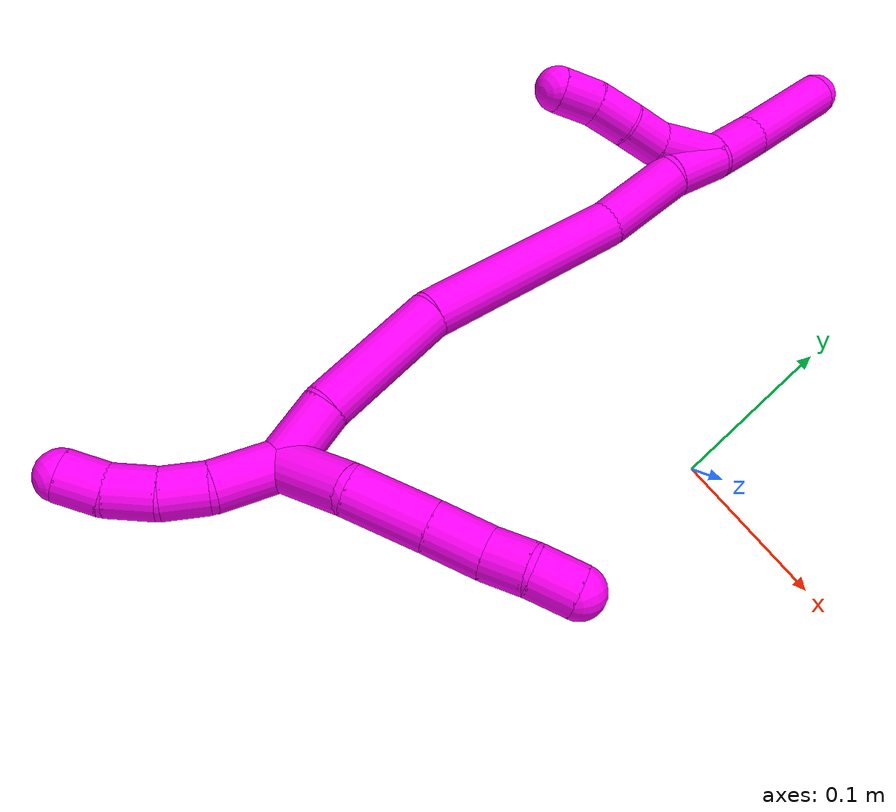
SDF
<sdf version="1.7">
 <world name="default">
  <model name="10">
   <static>0</static>
   <link name="10">
    <collision name="collision-cylinder-e_1_2_8">
     <pose>0.018732 -0.002468 -0.005484 2.71872 1.26012 2.56906</pose>
     <geometry><cylinder><radius>0.0125</radius><length>0.039347</length></cylinder></geometry>
     <surface>
      <friction><ode><mu>1.16</mu><mu2>1.16</mu2><slip1>0</slip1><slip2>0</slip2></ode></friction>
      <contact><ode><kp>1e+06</kp><kd>1</kd><max_vel>0</max_vel><min_depth>0.001</min_depth></ode></contact>
     </surface>
    </collision>
    <visual name="visual-cylinder-e_1_2_8">
     <pose>0.018732 -0.002468 -0.005484 2.71872 1.26012 2.56906</pose>
     <geometry><cylinder><radius>0.0125</radius><length>0.039347</length></cylinder></geometry>
     <material><ambient>1 0 0.964706 1</ambient></material>
    </visual>
    <collision name="collision-cylinder-e_2_8_9">
     <pose>0.053536 -0.012398 -0.02029 2.46654 0.93189 1.92296</pose>
     <geometry><cylinder><radius>0.0125</radius><length>0.040044</length></cylinder></geometry>
     <surface>
      <friction><ode><mu>1.16</mu><mu2>1.16</mu2><slip1>0</slip1><slip2>0</slip2></ode></friction>
      <contact><ode><kp>1e+06</kp><kd>1</kd><max_vel>0</max_vel><min_depth>0.001</min_depth></ode></contact>
     </surface>
    </collision>
    <visual name="visual-cylinder-e_2_8_9">
     <pose>0.053536 -0.012398 -0.02029 2.46654 0.93189 1.92296</pose>
     <geometry><cylinder><radius>0.0125</radius><length>0.040044</length></cylinder></geometry>
     <material><ambient>1 0 0.964706 1</ambient></material>
    </visual>
    <collision name="collision-cylinder-e_3_9_10">
     <pose>0.080887 -0.025072 -0.035736 2.43647 0.951291 1.90106</pose>
     <geometry><cylinder><radius>0.0125</radius><length>0.027705</length></cylinder></geometry>
     <surface>
      <friction><ode><mu>1.16</mu><mu2>1.16</mu2><slip1>0</slip1><slip2>0</slip2></ode></friction>
      <contact><ode><kp>1e+06</kp><kd>1</kd><max_vel>0</max_vel><min_depth>0.001</min_depth></ode></contact>
     </surface>
    </collision>
    <visual name="visual-cylinder-e_3_9_10">
     <pose>0.080887 -0.025072 -0.035736 2.43647 0.951291 1.90106</pose>
     <geometry><cylinder><radius>0.0125</radius><length>0.027705</length></cylinder></geometry>
     <material><ambient>1 0 0.964706 1</ambient></material>
    </visual>
    <collision name="collision-cylinder-e_4_10_11">
     <pose>0.101413 -0.032668 -0.046098 2.62931 1.08683 2.32343</pose>
     <geometry><cylinder><radius>0.0125</radius><length>0.020895</length></cylinder></geometry>
     <surface>
      <friction><ode><mu>1.16</mu><mu2>1.16</mu2><slip1>0</slip1><slip2>0</slip2></ode></friction>
      <contact><ode><kp>1e+06</kp><kd>1</kd><max_vel>0</max_vel><min_depth>0.001</min_depth></ode></contact>
     </surface>
    </collision>
    <visual name="visual-cylinder-e_4_10_11">
     <pose>0.101413 -0.032668 -0.046098 2.62931 1.08683 2.32343</pose>
     <geometry><cylinder><radius>0.0125</radius><length>0.020895</length></cylinder></geometry>
     <material><ambient>1 0 0.964706 1</ambient></material>
    </visual>
    <collision name="collision-cylinder-e_5_11_6">
     <pose>0.118928 -0.039782 -0.055846 2.43214 0.849981 1.76984</pose>
     <geometry><cylinder><radius>0.0125</radius><length>0.022008</length></cylinder></geometry>
     <surface>
      <friction><ode><mu>1.16</mu><mu2>1.16</mu2><slip1>0</slip1><slip2>0</slip2></ode></friction>
      <contact><ode><kp>1e+06</kp><kd>1</kd><max_vel>0</max_vel><min_depth>0.001</min_depth></ode></contact>
     </surface>
    </collision>
    <visual name="visual-cylinder-e_5_11_6">
     <pose>0.118928 -0.039782 -0.055846 2.43214 0.849981 1.76984</pose>
     <geometry><cylinder><radius>0.0125</radius><length>0.022008</length></cylinder></geometry>
     <material><ambient>1 0 0.964706 1</ambient></material>
    </visual>
    <collision name="collision-cylinder-e_1_2_12">
     <pose>-0.00422 -0.000662 0.016152 0.040969 -0.25535 -0.00526</pose>
     <geometry><cylinder><radius>0.0125</radius><length>0.033415</length></cylinder></geometry>
     <surface>
      <friction><ode><mu>1.16</mu><mu2>1.16</mu2><slip1>0</slip1><slip2>0</slip2></ode></friction>
      <contact><ode><kp>1e+06</kp><kd>1</kd><max_vel>0</max_vel><min_depth>0.001</min_depth></ode></contact>
     </surface>
    </collision>
    <visual name="visual-cylinder-e_1_2_12">
     <pose>-0.00422 -0.000662 0.016152 0.040969 -0.25535 -0.00526</pose>
     <geometry><cylinder><radius>0.0125</radius><length>0.033415</length></cylinder></geometry>
     <material><ambient>1 0 0.964706 1</ambient></material>
    </visual>
    <collision name="collision-cylinder-e_2_12_13">
     <pose>-0.014095 -0.000838 0.041828 -0.051041 -0.535225 0.013998</pose>
     <geometry><cylinder><radius>0.0125</radius><length>0.022173</length></cylinder></geometry>
     <surface>
      <friction><ode><mu>1.16</mu><mu2>1.16</mu2><slip1>0</slip1><slip2>0</slip2></ode></friction>
      <contact><ode><kp>1e+06</kp><kd>1</kd><max_vel>0</max_vel><min_depth>0.001</min_depth></ode></contact>
     </surface>
    </collision>
    <visual name="visual-cylinder-e_2_12_13">
     <pose>-0.014095 -0.000838 0.041828 -0.051041 -0.535225 0.013998</pose>
     <geometry><cylinder><radius>0.0125</radius><length>0.022173</length></cylinder></geometry>
     <material><ambient>1 0 0.964706 1</ambient></material>
    </visual>
    <collision name="collision-cylinder-e_3_13_14">
     <pose>-0.027203 0.001704 0.060058 -0.231859 -0.694684 0.084266</pose>
     <geometry><cylinder><radius>0.0125</radius><length>0.023287</length></cylinder></geometry>
     <surface>
      <friction><ode><mu>1.16</mu><mu2>1.16</mu2><slip1>0</slip1><slip2>0</slip2></ode></friction>
      <contact><ode><kp>1e+06</kp><kd>1</kd><max_vel>0</max_vel><min_depth>0.001</min_depth></ode></contact>
     </surface>
    </collision>
    <visual name="visual-cylinder-e_3_13_14">
     <pose>-0.027203 0.001704 0.060058 -0.231859 -0.694684 0.084266</pose>
     <geometry><cylinder><radius>0.0125</radius><length>0.023287</length></cylinder></geometry>
     <material><ambient>1 0 0.964706 1</ambient></material>
    </visual>
    <collision name="collision-cylinder-e_4_14_5">
     <pose>-0.041922 0.007709 0.075335 -0.541153 -0.758581 0.220227</pose>
     <geometry><cylinder><radius>0.0125</radius><length>0.021125</length></cylinder></geometry>
     <surface>
      <friction><ode><mu>1.16</mu><mu2>1.16</mu2><slip1>0</slip1><slip2>0</slip2></ode></friction>
      <contact><ode><kp>1e+06</kp><kd>1</kd><max_vel>0</max_vel><min_depth>0.001</min_depth></ode></contact>
     </surface>
    </collision>
    <visual name="visual-cylinder-e_4_14_5">
     <pose>-0.041922 0.007709 0.075335 -0.541153 -0.758581 0.220227</pose>
     <geometry><cylinder><radius>0.0125</radius><length>0.021125</length></cylinder></geometry>
     <material><ambient>1 0 0.964706 1</ambient></material>
    </visual>
    <collision name="collision-cylinder-e_1_2_15">
     <pose>-0.000526 0.009099 -0.014236 -2.57288 -0.031107 0.106339</pose>
     <geometry><cylinder><radius>0.0125</radius><length>0.033806</length></cylinder></geometry>
     <surface>
      <friction><ode><mu>1.16</mu><mu2>1.16</mu2><slip1>0</slip1><slip2>0</slip2></ode></friction>
      <contact><ode><kp>1e+06</kp><kd>1</kd><max_vel>0</max_vel><min_depth>0.001</min_depth></ode></contact>
     </surface>
    </collision>
    <visual name="visual-cylinder-e_1_2_15">
     <pose>-0.000526 0.009099 -0.014236 -2.57288 -0.031107 0.106339</pose>
     <geometry><cylinder><radius>0.0125</radius><length>0.033806</length></cylinder></geometry>
     <material><ambient>1 0 0.964706 1</ambient></material>
    </visual>
    <collision name="collision-cylinder-e_2_15_16">
     <pose>-0.000604 0.031289 -0.061111 -2.76014 0.012732 -0.065919</pose>
     <geometry><cylinder><radius>0.0125</radius><length>0.070341</length></cylinder></geometry>
     <surface>
      <friction><ode><mu>1.16</mu><mu2>1.16</mu2><slip1>0</slip1><slip2>0</slip2></ode></friction>
      <contact><ode><kp>1e+06</kp><kd>1</kd><max_vel>0</max_vel><min_depth>0.001</min_depth></ode></contact>
     </surface>
    </collision>
    <visual name="visual-cylinder-e_2_15_16">
     <pose>-0.000604 0.031289 -0.061111 -2.76014 0.012732 -0.065919</pose>
     <geometry><cylinder><radius>0.0125</radius><length>0.070341</length></cylinder></geometry>
     <material><ambient>1 0 0.964706 1</ambient></material>
    </visual>
    <collision name="collision-cylinder-e_3_16_17">
     <pose>0.005755 0.05397 -0.151253 -2.97635 0.101052 -1.09647</pose>
     <geometry><cylinder><radius>0.0125</radius><length>0.11719</length></cylinder></geometry>
     <surface>
      <friction><ode><mu>1.16</mu><mu2>1.16</mu2><slip1>0</slip1><slip2>0</slip2></ode></friction>
      <contact><ode><kp>1e+06</kp><kd>1</kd><max_vel>0</max_vel><min_depth>0.001</min_depth></ode></contact>
     </surface>
    </collision>
    <visual name="visual-cylinder-e_3_16_17">
     <pose>0.005755 0.05397 -0.151253 -2.97635 0.101052 -1.09647</pose>
     <geometry><cylinder><radius>0.0125</radius><length>0.11719</length></cylinder></geometry>
     <material><ambient>1 0 0.964706 1</ambient></material>
    </visual>
    <collision name="collision-cylinder-e_4_17_18">
     <pose>0.016388 0.072582 -0.230083 -2.74139 0.201141 -0.923372</pose>
     <geometry><cylinder><radius>0.0125</radius><length>0.047267</length></cylinder></geometry>
     <surface>
      <friction><ode><mu>1.16</mu><mu2>1.16</mu2><slip1>0</slip1><slip2>0</slip2></ode></friction>
      <contact><ode><kp>1e+06</kp><kd>1</kd><max_vel>0</max_vel><min_depth>0.001</min_depth></ode></contact>
     </surface>
    </collision>
    <visual name="visual-cylinder-e_4_17_18">
     <pose>0.016388 0.072582 -0.230083 -2.74139 0.201141 -0.923372</pose>
     <geometry><cylinder><radius>0.0125</radius><length>0.047267</length></cylinder></geometry>
     <material><ambient>1 0 0.964706 1</ambient></material>
    </visual>
    <collision name="collision-cylinder-e_5_18_1">
     <pose>0.023186 0.083503 -0.266853 -3.01921 0.132625 -1.65129</pose>
     <geometry><cylinder><radius>0.0125</radius><length>0.031395</length></cylinder></geometry>
     <surface>
      <friction><ode><mu>1.16</mu><mu2>1.16</mu2><slip1>0</slip1><slip2>0</slip2></ode></friction>
      <contact><ode><kp>1e+06</kp><kd>1</kd><max_vel>0</max_vel><min_depth>0.001</min_depth></ode></contact>
     </surface>
    </collision>
    <visual name="visual-cylinder-e_5_18_1">
     <pose>0.023186 0.083503 -0.266853 -3.01921 0.132625 -1.65129</pose>
     <geometry><cylinder><radius>0.0125</radius><length>0.031395</length></cylinder></geometry>
     <material><ambient>1 0 0.964706 1</ambient></material>
    </visual>
    <collision name="collision-cylinder-e_1_1_19">
     <pose>0.023795 0.08737 -0.299866 -3.03011 -0.082728 1.27635</pose>
     <geometry><cylinder><radius>0.0125</radius><length>0.03548</length></cylinder></geometry>
     <surface>
      <friction><ode><mu>1.16</mu><mu2>1.16</mu2><slip1>0</slip1><slip2>0</slip2></ode></friction>
      <contact><ode><kp>1e+06</kp><kd>1</kd><max_vel>0</max_vel><min_depth>0.001</min_depth></ode></contact>
     </surface>
    </collision>
    <visual name="visual-cylinder-e_1_1_19">
     <pose>0.023795 0.08737 -0.299866 -3.03011 -0.082728 1.27635</pose>
     <geometry><cylinder><radius>0.0125</radius><length>0.03548</length></cylinder></geometry>
     <material><ambient>1 0 0.964706 1</ambient></material>
    </visual>
    <collision name="collision-cylinder-e_2_19_4">
     <pose>0.022751 0.095747 -0.34905 -2.94154 0.013078 -0.130125</pose>
     <geometry><cylinder><radius>0.0125</radius><length>0.06452</length></cylinder></geometry>
     <surface>
      <friction><ode><mu>1.16</mu><mu2>1.16</mu2><slip1>0</slip1><slip2>0</slip2></ode></friction>
      <contact><ode><kp>1e+06</kp><kd>1</kd><max_vel>0</max_vel><min_depth>0.001</min_depth></ode></contact>
     </surface>
    </collision>
    <visual name="visual-cylinder-e_2_19_4">
     <pose>0.022751 0.095747 -0.34905 -2.94154 0.013078 -0.130125</pose>
     <geometry><cylinder><radius>0.0125</radius><length>0.06452</length></cylinder></geometry>
     <material><ambient>1 0 0.964706 1</ambient></material>
    </visual>
    <collision name="collision-cylinder-e_1_1_20">
     <pose>0.017772 0.091586 -0.2676 -0.398216 -0.439118 0.089997</pose>
     <geometry><cylinder><radius>0.0125</radius><length>0.035232</length></cylinder></geometry>
     <surface>
      <friction><ode><mu>1.16</mu><mu2>1.16</mu2><slip1>0</slip1><slip2>0</slip2></ode></friction>
      <contact><ode><kp>1e+06</kp><kd>1</kd><max_vel>0</max_vel><min_depth>0.001</min_depth></ode></contact>
     </surface>
    </collision>
    <visual name="visual-cylinder-e_1_1_20">
     <pose>0.017772 0.091586 -0.2676 -0.398216 -0.439118 0.089997</pose>
     <geometry><cylinder><radius>0.0125</radius><length>0.035232</length></cylinder></geometry>
     <material><ambient>1 0 0.964706 1</ambient></material>
    </visual>
    <collision name="collision-cylinder-e_2_20_21">
     <pose>0.006624 0.104332 -0.245465 -0.723032 -0.353376 0.134827</pose>
     <geometry><cylinder><radius>0.0125</radius><length>0.021146</length></cylinder></geometry>
     <surface>
      <friction><ode><mu>1.16</mu><mu2>1.16</mu2><slip1>0</slip1><slip2>0</slip2></ode></friction>
      <contact><ode><kp>1e+06</kp><kd>1</kd><max_vel>0</max_vel><min_depth>0.001</min_depth></ode></contact>
     </surface>
    </collision>
    <visual name="visual-cylinder-e_2_20_21">
     <pose>0.006624 0.104332 -0.245465 -0.723032 -0.353376 0.134827</pose>
     <geometry><cylinder><radius>0.0125</radius><length>0.021146</length></cylinder></geometry>
     <material><ambient>1 0 0.964706 1</ambient></material>
    </visual>
    <collision name="collision-cylinder-e_3_21_22">
     <pose>-0.002209 0.117482 -0.230948 -0.749306 -0.491292 0.196536</pose>
     <geometry><cylinder><radius>0.0125</radius><length>0.021933</length></cylinder></geometry>
     <surface>
      <friction><ode><mu>1.16</mu><mu2>1.16</mu2><slip1>0</slip1><slip2>0</slip2></ode></friction>
      <contact><ode><kp>1e+06</kp><kd>1</kd><max_vel>0</max_vel><min_depth>0.001</min_depth></ode></contact>
     </surface>
    </collision>
    <visual name="visual-cylinder-e_3_21_22">
     <pose>-0.002209 0.117482 -0.230948 -0.749306 -0.491292 0.196536</pose>
     <geometry><cylinder><radius>0.0125</radius><length>0.021933</length></cylinder></geometry>
     <material><ambient>1 0 0.964706 1</ambient></material>
    </visual>
    <collision name="collision-cylinder-e_4_22_3">
     <pose>-0.011983 0.128907 -0.215323 -0.515305 -0.438083 0.117187</pose>
     <geometry><cylinder><radius>0.0125</radius><length>0.021689</length></cylinder></geometry>
     <surface>
      <friction><ode><mu>1.16</mu><mu2>1.16</mu2><slip1>0</slip1><slip2>0</slip2></ode></friction>
      <contact><ode><kp>1e+06</kp><kd>1</kd><max_vel>0</max_vel><min_depth>0.001</min_depth></ode></contact>
     </surface>
    </collision>
    <visual name="visual-cylinder-e_4_22_3">
     <pose>-0.011983 0.128907 -0.215323 -0.515305 -0.438083 0.117187</pose>
     <geometry><cylinder><radius>0.0125</radius><length>0.021689</length></cylinder></geometry>
     <material><ambient>1 0 0.964706 1</ambient></material>
    </visual>
    <collision name="collision-sphere-3">
     <pose>-0.016583 0.133747 -0.206778 0 -0 0</pose>
     <geometry><sphere><radius>0.0125</radius></sphere></geometry>
     <surface>
      <friction><ode><mu>1.16</mu><mu2>1.16</mu2><slip1>0</slip1><slip2>0</slip2></ode></friction>
      <contact><ode><kp>1e+06</kp><kd>1</kd><max_vel>0</max_vel><min_depth>0.001</min_depth></ode></contact>
     </surface>
    </collision>
    <visual name="visual-sphere-3">
     <pose>-0.016583 0.133747 -0.206778 0 -0 0</pose>
     <geometry><sphere><radius>0.0125</radius></sphere></geometry>
     <material><ambient>1 0 0.964706 1</ambient></material>
    </visual>
    <collision name="collision-sphere-22">
     <pose>-0.007382 0.124068 -0.223868 0 -0 0</pose>
     <geometry><sphere><radius>0.0125</radius></sphere></geometry>
     <surface>
      <friction><ode><mu>1.16</mu><mu2>1.16</mu2><slip1>0</slip1><slip2>0</slip2></ode></friction>
      <contact><ode><kp>1e+06</kp><kd>1</kd><max_vel>0</max_vel><min_depth>0.001</min_depth></ode></contact>
     </surface>
    </collision>
    <visual name="visual-sphere-22">
     <pose>-0.007382 0.124068 -0.223868 0 -0 0</pose>
     <geometry><sphere><radius>0.0125</radius></sphere></geometry>
     <material><ambient>1 0 0.964706 1</ambient></material>
    </visual>
    <collision name="collision-sphere-21">
     <pose>0.002965 0.110895 -0.238027 0 -0 0</pose>
     <geometry><sphere><radius>0.0125</radius></sphere></geometry>
     <surface>
      <friction><ode><mu>1.16</mu><mu2>1.16</mu2><slip1>0</slip1><slip2>0</slip2></ode></friction>
      <contact><ode><kp>1e+06</kp><kd>1</kd><max_vel>0</max_vel><min_depth>0.001</min_depth></ode></contact>
     </surface>
    </collision>
    <visual name="visual-sphere-21">
     <pose>0.002965 0.110895 -0.238027 0 -0 0</pose>
     <geometry><sphere><radius>0.0125</radius></sphere></geometry>
     <material><ambient>1 0 0.964706 1</ambient></material>
    </visual>
    <collision name="collision-sphere-20">
     <pose>0.010283 0.097768 -0.252903 0 -0 0</pose>
     <geometry><sphere><radius>0.0125</radius></sphere></geometry>
     <surface>
      <friction><ode><mu>1.16</mu><mu2>1.16</mu2><slip1>0</slip1><slip2>0</slip2></ode></friction>
      <contact><ode><kp>1e+06</kp><kd>1</kd><max_vel>0</max_vel><min_depth>0.001</min_depth></ode></contact>
     </surface>
    </collision>
    <visual name="visual-sphere-20">
     <pose>0.010283 0.097768 -0.252903 0 -0 0</pose>
     <geometry><sphere><radius>0.0125</radius></sphere></geometry>
     <material><ambient>1 0 0.964706 1</ambient></material>
    </visual>
    <collision name="collision-sphere-4">
     <pose>0.023173 0.102157 -0.380664 0 -0 0</pose>
     <geometry><sphere><radius>0.0125</radius></sphere></geometry>
     <surface>
      <friction><ode><mu>1.16</mu><mu2>1.16</mu2><slip1>0</slip1><slip2>0</slip2></ode></friction>
      <contact><ode><kp>1e+06</kp><kd>1</kd><max_vel>0</max_vel><min_depth>0.001</min_depth></ode></contact>
     </surface>
    </collision>
    <visual name="visual-sphere-4">
     <pose>0.023173 0.102157 -0.380664 0 -0 0</pose>
     <geometry><sphere><radius>0.0125</radius></sphere></geometry>
     <material><ambient>1 0 0.964706 1</ambient></material>
    </visual>
    <collision name="collision-sphere-6">
     <pose>0.127195 -0.044513 -0.061356 0 -0 0</pose>
     <geometry><sphere><radius>0.0125</radius></sphere></geometry>
     <surface>
      <friction><ode><mu>1.16</mu><mu2>1.16</mu2><slip1>0</slip1><slip2>0</slip2></ode></friction>
      <contact><ode><kp>1e+06</kp><kd>1</kd><max_vel>0</max_vel><min_depth>0.001</min_depth></ode></contact>
     </surface>
    </collision>
    <visual name="visual-sphere-6">
     <pose>0.127195 -0.044513 -0.061356 0 -0 0</pose>
     <geometry><sphere><radius>0.0125</radius></sphere></geometry>
     <material><ambient>1 0 0.964706 1</ambient></material>
    </visual>
    <collision name="collision-sphere-11">
     <pose>0.110661 -0.035051 -0.050335 0 -0 0</pose>
     <geometry><sphere><radius>0.0125</radius></sphere></geometry>
     <surface>
      <friction><ode><mu>1.16</mu><mu2>1.16</mu2><slip1>0</slip1><slip2>0</slip2></ode></friction>
      <contact><ode><kp>1e+06</kp><kd>1</kd><max_vel>0</max_vel><min_depth>0.001</min_depth></ode></contact>
     </surface>
    </collision>
    <visual name="visual-sphere-11">
     <pose>0.110661 -0.035051 -0.050335 0 -0 0</pose>
     <geometry><sphere><radius>0.0125</radius></sphere></geometry>
     <material><ambient>1 0 0.964706 1</ambient></material>
    </visual>
    <collision name="collision-sphere-10">
     <pose>0.092165 -0.030285 -0.041861 0 -0 0</pose>
     <geometry><sphere><radius>0.0125</radius></sphere></geometry>
     <surface>
      <friction><ode><mu>1.16</mu><mu2>1.16</mu2><slip1>0</slip1><slip2>0</slip2></ode></friction>
      <contact><ode><kp>1e+06</kp><kd>1</kd><max_vel>0</max_vel><min_depth>0.001</min_depth></ode></contact>
     </surface>
    </collision>
    <visual name="visual-sphere-10">
     <pose>0.092165 -0.030285 -0.041861 0 -0 0</pose>
     <geometry><sphere><radius>0.0125</radius></sphere></geometry>
     <material><ambient>1 0 0.964706 1</ambient></material>
    </visual>
    <collision name="collision-sphere-9">
     <pose>0.069609 -0.019859 -0.029611 0 -0 0</pose>
     <geometry><sphere><radius>0.0125</radius></sphere></geometry>
     <surface>
      <friction><ode><mu>1.16</mu><mu2>1.16</mu2><slip1>0</slip1><slip2>0</slip2></ode></friction>
      <contact><ode><kp>1e+06</kp><kd>1</kd><max_vel>0</max_vel><min_depth>0.001</min_depth></ode></contact>
     </surface>
    </collision>
    <visual name="visual-sphere-9">
     <pose>0.069609 -0.019859 -0.029611 0 -0 0</pose>
     <geometry><sphere><radius>0.0125</radius></sphere></geometry>
     <material><ambient>1 0 0.964706 1</ambient></material>
    </visual>
    <collision name="collision-sphere-2">
     <geometry><sphere><radius>0.0125</radius></sphere></geometry>
     <surface>
      <friction><ode><mu>1.16</mu><mu2>1.16</mu2><slip1>0</slip1><slip2>0</slip2></ode></friction>
      <contact><ode><kp>1e+06</kp><kd>1</kd><max_vel>0</max_vel><min_depth>0.001</min_depth></ode></contact>
     </surface>
    </collision>
    <visual name="visual-sphere-2">
     <geometry><sphere><radius>0.0125</radius></sphere></geometry>
     <material><ambient>1 0 0.964706 1</ambient></material>
    </visual>
    <collision name="collision-sphere-19">
     <pose>0.022329 0.089337 -0.317436 0 -0 0</pose>
     <geometry><sphere><radius>0.0125</radius></sphere></geometry>
     <surface>
      <friction><ode><mu>1.16</mu><mu2>1.16</mu2><slip1>0</slip1><slip2>0</slip2></ode></friction>
      <contact><ode><kp>1e+06</kp><kd>1</kd><max_vel>0</max_vel><min_depth>0.001</min_depth></ode></contact>
     </surface>
    </collision>
    <visual name="visual-sphere-19">
     <pose>0.022329 0.089337 -0.317436 0 -0 0</pose>
     <geometry><sphere><radius>0.0125</radius></sphere></geometry>
     <material><ambient>1 0 0.964706 1</ambient></material>
    </visual>
    <collision name="collision-sphere-8">
     <pose>0.037463 -0.004936 -0.010969 0 -0 0</pose>
     <geometry><sphere><radius>0.0125</radius></sphere></geometry>
     <surface>
      <friction><ode><mu>1.16</mu><mu2>1.16</mu2><slip1>0</slip1><slip2>0</slip2></ode></friction>
      <contact><ode><kp>1e+06</kp><kd>1</kd><max_vel>0</max_vel><min_depth>0.001</min_depth></ode></contact>
     </surface>
    </collision>
    <visual name="visual-sphere-8">
     <pose>0.037463 -0.004936 -0.010969 0 -0 0</pose>
     <geometry><sphere><radius>0.0125</radius></sphere></geometry>
     <material><ambient>1 0 0.964706 1</ambient></material>
    </visual>
    <collision name="collision-sphere-12">
     <pose>-0.00844 -0.001324 0.032305 0 -0 0</pose>
     <geometry><sphere><radius>0.0125</radius></sphere></geometry>
     <surface>
      <friction><ode><mu>1.16</mu><mu2>1.16</mu2><slip1>0</slip1><slip2>0</slip2></ode></friction>
      <contact><ode><kp>1e+06</kp><kd>1</kd><max_vel>0</max_vel><min_depth>0.001</min_depth></ode></contact>
     </surface>
    </collision>
    <visual name="visual-sphere-12">
     <pose>-0.00844 -0.001324 0.032305 0 -0 0</pose>
     <geometry><sphere><radius>0.0125</radius></sphere></geometry>
     <material><ambient>1 0 0.964706 1</ambient></material>
    </visual>
    <collision name="collision-sphere-13">
     <pose>-0.019749 -0.000351 0.051352 0 -0 0</pose>
     <geometry><sphere><radius>0.0125</radius></sphere></geometry>
     <surface>
      <friction><ode><mu>1.16</mu><mu2>1.16</mu2><slip1>0</slip1><slip2>0</slip2></ode></friction>
      <contact><ode><kp>1e+06</kp><kd>1</kd><max_vel>0</max_vel><min_depth>0.001</min_depth></ode></contact>
     </surface>
    </collision>
    <visual name="visual-sphere-13">
     <pose>-0.019749 -0.000351 0.051352 0 -0 0</pose>
     <geometry><sphere><radius>0.0125</radius></sphere></geometry>
     <material><ambient>1 0 0.964706 1</ambient></material>
    </visual>
    <collision name="collision-sphere-14">
     <pose>-0.034656 0.00376 0.068764 0 -0 0</pose>
     <geometry><sphere><radius>0.0125</radius></sphere></geometry>
     <surface>
      <friction><ode><mu>1.16</mu><mu2>1.16</mu2><slip1>0</slip1><slip2>0</slip2></ode></friction>
      <contact><ode><kp>1e+06</kp><kd>1</kd><max_vel>0</max_vel><min_depth>0.001</min_depth></ode></contact>
     </surface>
    </collision>
    <visual name="visual-sphere-14">
     <pose>-0.034656 0.00376 0.068764 0 -0 0</pose>
     <geometry><sphere><radius>0.0125</radius></sphere></geometry>
     <material><ambient>1 0 0.964706 1</ambient></material>
    </visual>
    <collision name="collision-sphere-5">
     <pose>-0.049188 0.011658 0.081905 0 -0 0</pose>
     <geometry><sphere><radius>0.0125</radius></sphere></geometry>
     <surface>
      <friction><ode><mu>1.16</mu><mu2>1.16</mu2><slip1>0</slip1><slip2>0</slip2></ode></friction>
      <contact><ode><kp>1e+06</kp><kd>1</kd><max_vel>0</max_vel><min_depth>0.001</min_depth></ode></contact>
     </surface>
    </collision>
    <visual name="visual-sphere-5">
     <pose>-0.049188 0.011658 0.081905 0 -0 0</pose>
     <geometry><sphere><radius>0.0125</radius></sphere></geometry>
     <material><ambient>1 0 0.964706 1</ambient></material>
    </visual>
    <collision name="collision-sphere-15">
     <pose>-0.001051 0.018197 -0.028471 0 -0 0</pose>
     <geometry><sphere><radius>0.0125</radius></sphere></geometry>
     <surface>
      <friction><ode><mu>1.16</mu><mu2>1.16</mu2><slip1>0</slip1><slip2>0</slip2></ode></friction>
      <contact><ode><kp>1e+06</kp><kd>1</kd><max_vel>0</max_vel><min_depth>0.001</min_depth></ode></contact>
     </surface>
    </collision>
    <visual name="visual-sphere-15">
     <pose>-0.001051 0.018197 -0.028471 0 -0 0</pose>
     <geometry><sphere><radius>0.0125</radius></sphere></geometry>
     <material><ambient>1 0 0.964706 1</ambient></material>
    </visual>
    <collision name="collision-sphere-16">
     <pose>-0.000156 0.044381 -0.093751 0 -0 0</pose>
     <geometry><sphere><radius>0.0125</radius></sphere></geometry>
     <surface>
      <friction><ode><mu>1.16</mu><mu2>1.16</mu2><slip1>0</slip1><slip2>0</slip2></ode></friction>
      <contact><ode><kp>1e+06</kp><kd>1</kd><max_vel>0</max_vel><min_depth>0.001</min_depth></ode></contact>
     </surface>
    </collision>
    <visual name="visual-sphere-16">
     <pose>-0.000156 0.044381 -0.093751 0 -0 0</pose>
     <geometry><sphere><radius>0.0125</radius></sphere></geometry>
     <material><ambient>1 0 0.964706 1</ambient></material>
    </visual>
    <collision name="collision-sphere-17">
     <pose>0.011666 0.063559 -0.208755 0 -0 0</pose>
     <geometry><sphere><radius>0.0125</radius></sphere></geometry>
     <surface>
      <friction><ode><mu>1.16</mu><mu2>1.16</mu2><slip1>0</slip1><slip2>0</slip2></ode></friction>
      <contact><ode><kp>1e+06</kp><kd>1</kd><max_vel>0</max_vel><min_depth>0.001</min_depth></ode></contact>
     </surface>
    </collision>
    <visual name="visual-sphere-17">
     <pose>0.011666 0.063559 -0.208755 0 -0 0</pose>
     <geometry><sphere><radius>0.0125</radius></sphere></geometry>
     <material><ambient>1 0 0.964706 1</ambient></material>
    </visual>
    <collision name="collision-sphere-18">
     <pose>0.02111 0.081604 -0.25141 0 -0 0</pose>
     <geometry><sphere><radius>0.0125</radius></sphere></geometry>
     <surface>
      <friction><ode><mu>1.16</mu><mu2>1.16</mu2><slip1>0</slip1><slip2>0</slip2></ode></friction>
      <contact><ode><kp>1e+06</kp><kd>1</kd><max_vel>0</max_vel><min_depth>0.001</min_depth></ode></contact>
     </surface>
    </collision>
    <visual name="visual-sphere-18">
     <pose>0.02111 0.081604 -0.25141 0 -0 0</pose>
     <geometry><sphere><radius>0.0125</radius></sphere></geometry>
     <material><ambient>1 0 0.964706 1</ambient></material>
    </visual>
    <collision name="collision-sphere-1">
     <pose>0.025261 0.085403 -0.282297 0 -0 0</pose>
     <geometry><sphere><radius>0.0125</radius></sphere></geometry>
     <surface>
      <friction><ode><mu>1.16</mu><mu2>1.16</mu2><slip1>0</slip1><slip2>0</slip2></ode></friction>
      <contact><ode><kp>1e+06</kp><kd>1</kd><max_vel>0</max_vel><min_depth>0.001</min_depth></ode></contact>
     </surface>
    </collision>
    <visual name="visual-sphere-1">
     <pose>0.025261 0.085403 -0.282297 0 -0 0</pose>
     <geometry><sphere><radius>0.0125</radius></sphere></geometry>
     <material><ambient>1 0 0.964706 1</ambient></material>
    </visual>
    <inertial>
     <pose>0.01703 0.043046 -0.132035 0 -0 0</pose>
     <mass>0.75</mass>
     <inertia>
      <ixx>2.4e-05</ixx>
      <ixy>0</ixy>
      <ixz>0</ixz>
      <iyy>-0.000205</iyy>
      <iyz>0</iyz>
      <izz>-9.4e-05</izz>
     </inertia>
    </inertial>
   </link>
   <pose>-0.157138 -0.150514 0.183572 0.609706 -0.780736 0.454829</pose>
  </model>
 </world>
</sdf>
